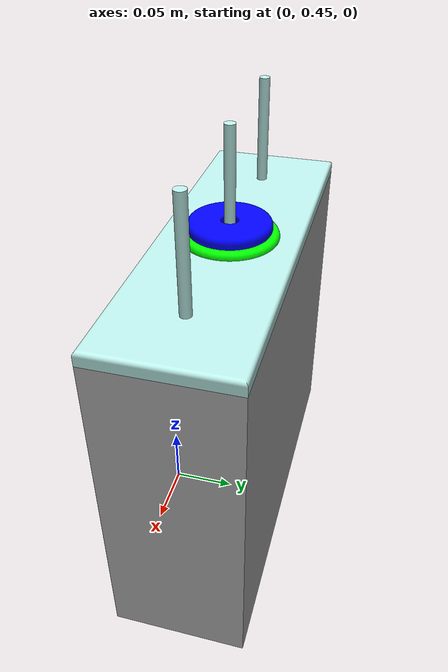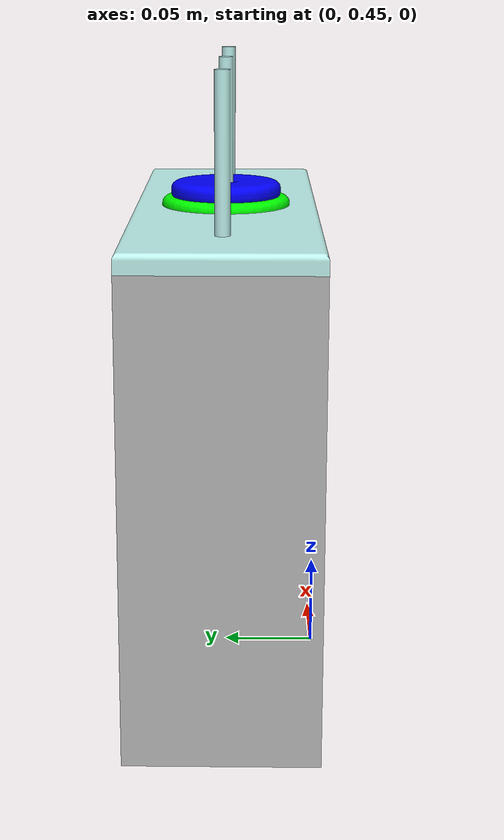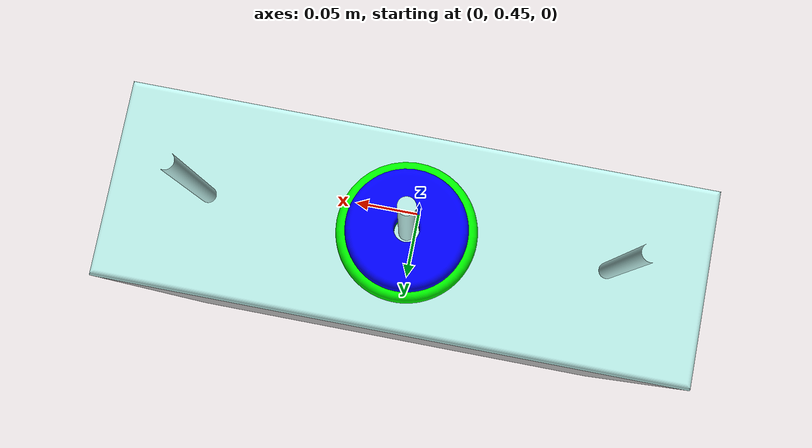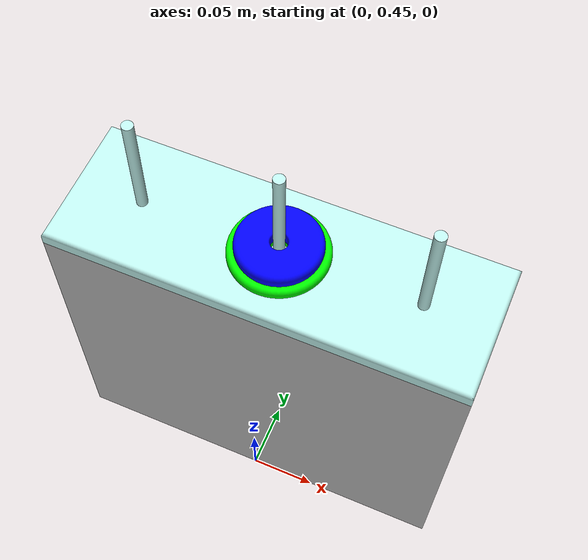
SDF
<?xml version="1.0"?>
<sdf version='1.9'>
  <world name='custom_world'>
    <gravity>0 0 -9.8000000000000007</gravity>
    <magnetic_field>5.5644999999999998e-06 2.2875799999999999e-05 -4.2388400000000002e-05</magnetic_field>
    <atmosphere type='adiabatic'/>
    <physics name="ode" type="ode">
      <max_step_size>0.001</max_step_size>
      <real_time_update_rate>1000.0</real_time_update_rate>
      <solver>
        <type>quick</type>
        <iters>100</iters>
        <sor>1.3</sor>
      </solver>
    </physics>
    <scene>
      <ambient>0.400000006 0.400000006 0.400000006 1</ambient>
      <background>0.699999988 0.699999988 0.699999988 1</background>
      <shadows>true</shadows>
    </scene>

    <model name='caixa'>
      <pose>0.000000000 0.500000000 0.125000000 0 0 0</pose>
      <link name='box_link'>
        <inertial>
          <inertia>
            <ixx>0.16666</ixx>
            <ixy>0</ixy>
            <ixz>0</ixz>
            <iyy>0.16666</iyy>
            <iyz>0</iyz>
            <izz>0.16666</izz>
          </inertia>
          <mass>1</mass>
          <pose>0 0 0 0 0 0</pose>
        </inertial>
        <collision name='box_collision'>
          <geometry>
            <box>
              <size>0.300000000000000000 0.100000000000000000 0.250000000000000000</size>
            </box>
          </geometry>
          <surface>
            <friction>
              <ode/>
            </friction>
            <bounce/>
            <contact/>
          </surface>
        </collision>
        <visual name='box_visual'>
          <geometry>
            <box>
              <size>0.300000000000000003 0.100000000000000003 0.250000000000000000</size>
            </box>
          </geometry>
          <material>
            <ambient>0.300000012 0.300000012 0.300000012 1</ambient>
            <diffuse>0.699999988 0.699999988 0.699999988 1</diffuse>
            <specular>1 1 1 1</specular>
          </material>
        </visual>
        <pose>0 0 0 0 0 0</pose>
        <enable_wind>false</enable_wind>
      </link>
      <static>true</static>
      <self_collide>false</self_collide>
    </model>

    <model name="towerbase">
      <include>
        <uri>file:///home/leo/workspace/ur_gz/src/Universal_Robots_ROS2_Ignition_Simulation/ur_simulation_gz/sdf/models/towerbase/towerbase.sdf</uri>
      </include>
      <pose>0.000000000 0.5000000 0.25000000 0.0 0.0 0.0</pose>
      <static>true</static>
      <self_collide>false</self_collide>
    </model>

    <model name="disk1">
      <pose>0.0000000 0.5000000000 0.2600000000000 0.000000000 0.000000000 0.000000000</pose>
      <include>
        <uri>file:///home/leo/workspace/ur_gz/src/Universal_Robots_ROS2_Ignition_Simulation/ur_simulation_gz/sdf/models/disk1/disk1.sdf</uri>
      </include>
      <static>false</static>
      <self_collide>false</self_collide>
    </model>

    <model name="disk2">
      <include>
        <uri>file:///home/leo/workspace/ur_gz/src/Universal_Robots_ROS2_Ignition_Simulation/ur_simulation_gz/sdf/models/disk2/disk2.sdf</uri>
      </include>
      <pose>0.0000000 0.500000000 0.265000000000 0.000000000 0.000000000 0.000000000</pose>
      <self_collide>false</self_collide>
    </model>
    <light name='directionallight' type='directional'>
      <pose>-0.169552 0.472756 2 0 -0 0</pose>
      <cast_shadows>true</cast_shadows>
      <intensity>1</intensity>
      <direction>0 0 -1</direction>
      <diffuse>0.8 0.8 0.8 1</diffuse>
      <specular>0.2 0.2 0.2 1</specular>
      <attenuation>
        <range>1000</range>
        <linear>0.01</linear>
        <constant>0.90000000000000002</constant>
        <quadratic>0.001</quadratic>
      </attenuation>
      <spot>
        <inner_angle>0</inner_angle>
        <outer_angle>0</outer_angle>
        <falloff>0</falloff>
      </spot>
    </light>
  </world>
</sdf>

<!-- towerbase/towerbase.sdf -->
<sdf version="1.6">
<model name="towerbase">
    <link name="towerbase_link">
        <frame name="towerbase_frame"><pose>0 0 0 0 -0 0</pose></frame>
        <visual name="towerbase_0_towerbase_visual">
            <pose>0 0 0 0 -0 0</pose>
            <geometry>
                <mesh>
                    <uri>file:///home/leo/workspace/ur_gz/src/Universal_Robots_ROS2_Ignition_Simulation/ur_simulation_gz/sdf/models/towerbase/towerbase.dae</uri>
                </mesh>
            </geometry>
            <material>
                <ambient>0.73725490196078435901 0.9372549019607843146 0.91764705882352937127 1</ambient>
                <diffuse>0.73725490196078435901 0.9372549019607843146 0.91764705882352937127 1</diffuse>
                <specular>0.1 0.1 0.1 1</specular>
                <emissive>0 0 0 0</emissive>
            </material>
        </visual>
        <collision name="towerbase_0_towerbase_visual">
            <pose>0 0 0 0 -0 0</pose>
            <geometry>
                <mesh>
                    <uri>file:///home/leo/workspace/ur_gz/src/Universal_Robots_ROS2_Ignition_Simulation/ur_simulation_gz/sdf/models/towerbase/towerbase.stl</uri>
                </mesh>
            </geometry>
            <surface>
            <friction>
                <ode>
                    <mu>0.05</mu> <!-- Coeficiente de fricção estática -->
                    <mu2>0.01</mu2> <!-- Coeficiente de fricção dinâmica -->
                </ode>
                <torsional>
                    <coefficient>0.05</coefficient> <!-- Coeficiente de fricção torsional -->
                </torsional>
            </friction>
        </surface>
        </collision>
        <inertial>
            <pose>4.6403630397362222697e-17 -7.9739324980047018321e-18 0.0076524240229390626603 0 0 0</pose>
            <mass>0.85676684417617976486</mass>
            <inertia>
                <ixx>0.00079776290276809967879</ixx><ixy>0.000000000000000000000</ixy><ixz>0</ixz>
                <iyy>0.0064995909410444250784</iyy><iyz>0</iyz>
                <izz>0.0070356536370976569678</izz>
            </inertia>
        </inertial>
    </link>

</model>
</sdf>

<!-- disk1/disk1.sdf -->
<sdf version="1.9">
    <model name="disk1">
        <link name="disk1_link">
          <frame name="disk1_frame">
            <pose>0 0 0 0 -0 0</pose>
          </frame>
          <collision name="disk1_collision">
            <geometry>
              <cylinder>
                <radius>0.035</radius>
                <length>0.010</length>
              </cylinder>
            </geometry>
          </collision>
          <collision name="hole_collision">
            <geometry>
              <cylinder>
                <radius>0.0125</radius>
                <length>0.010</length>
              </cylinder>
            </geometry>
            <pose>0.10000000000000000555 -1.469576158976823676e-17 -0.014999999999999999445 0 -0 0</pose>
          </collision>
          <visual name="disk1_visual">
            <pose>0.10000000000000000555 -1.469576158976823676e-17 -0.014999999999999999445 0 -0 0</pose>
            <geometry>
              <mesh>
                <uri>file:///home/leo/workspace/ur_gz/src/Universal_Robots_ROS2_Ignition_Simulation/ur_simulation_gz/sdf/models/disk1/disk1.dae</uri>
              </mesh>
            </geometry>
          </visual>
          <inertial>
            <pose>0 6.2405005324132813478e-20 1.7347234759768070944e-18 0 0 0</pose>
            <mass>0.85676684417617976486</mass>
            <inertia>
              <ixx>0.00079776290276809967879</ixx><ixy>3.4841825361120128937e-09</ixy><ixz>0</ixz>
              <iyy>0.0064995909410444250784</iyy><iyz>0</iyz>
              <izz>0.0070356536370976569678</izz>
            </inertia>
          </inertial>
        </link>
    </model>
</sdf>

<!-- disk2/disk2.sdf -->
<sdf version="1.9">
    <model name="disk2">
        <link name="disk2_link">
            <frame name="disk2_frame">
                <pose>0 0 0 0 -0 0</pose>
            </frame>
            <collision name="disk2_collision">
                <geometry>
                    <cylinder>
                        <radius>0.030</radius>
                        <length>0.010</length>
                    </cylinder>
                </geometry>
            </collision>
            <collision name="hole_collision">
                <geometry>
                    <cylinder>
                        <radius>0.0125</radius>
                        <length>0.010</length>
                    </cylinder>
                </geometry>
                <pose>0 0 0 0 0 0</pose>
            </collision>
            <visual name="disk2_visual">
                <pose>0.10000000000000000555 -1.4006897765247850566e-17 -0.022000000000000002193 0 -0 0</pose>
                <geometry>
                    <mesh>
                        <uri>
                        file:///home/leo/workspace/ur_gz/src/Universal_Robots_ROS2_Ignition_Simulation/ur_simulation_gz/sdf/models/disk2/disk2.dae
                        </uri>
                    </mesh>
                </geometry>
                <material>
                    <ambient>0 0 1 1</ambient>
                    <diffuse>0 0 1 1</diffuse>
                    <specular>0.1 0.1 0.1 1</specular>
                    <emissive>0 0 0 0</emissive>
                </material>
            </visual>
            <inertial>
                <pose>0 0 0 0 0 0</pose>
                <mass>0.0695285</mass>
                <inertia>
                    <ixx>0.00001625</ixx><ixy>0</ixy><ixz>0</ixz>
                    <iyy>0.00001625</iyy><iyz>0</iyz>
                    <izz>0.00003141</izz>
                </inertia>
            </inertial>
        </link>
    </model>
</sdf>
